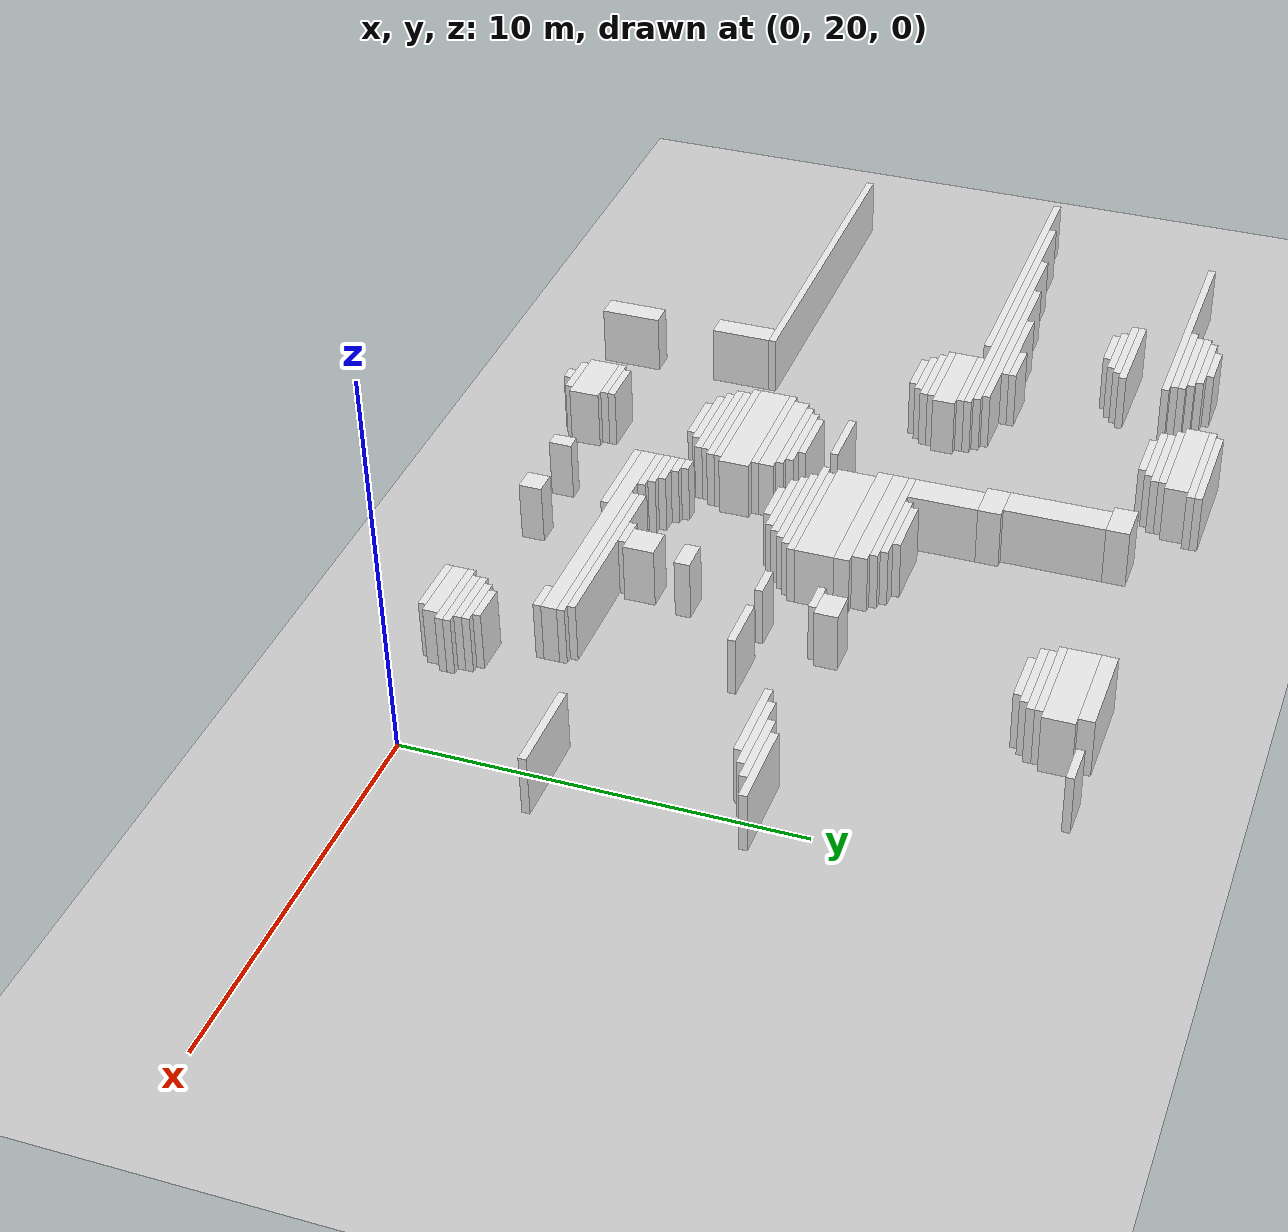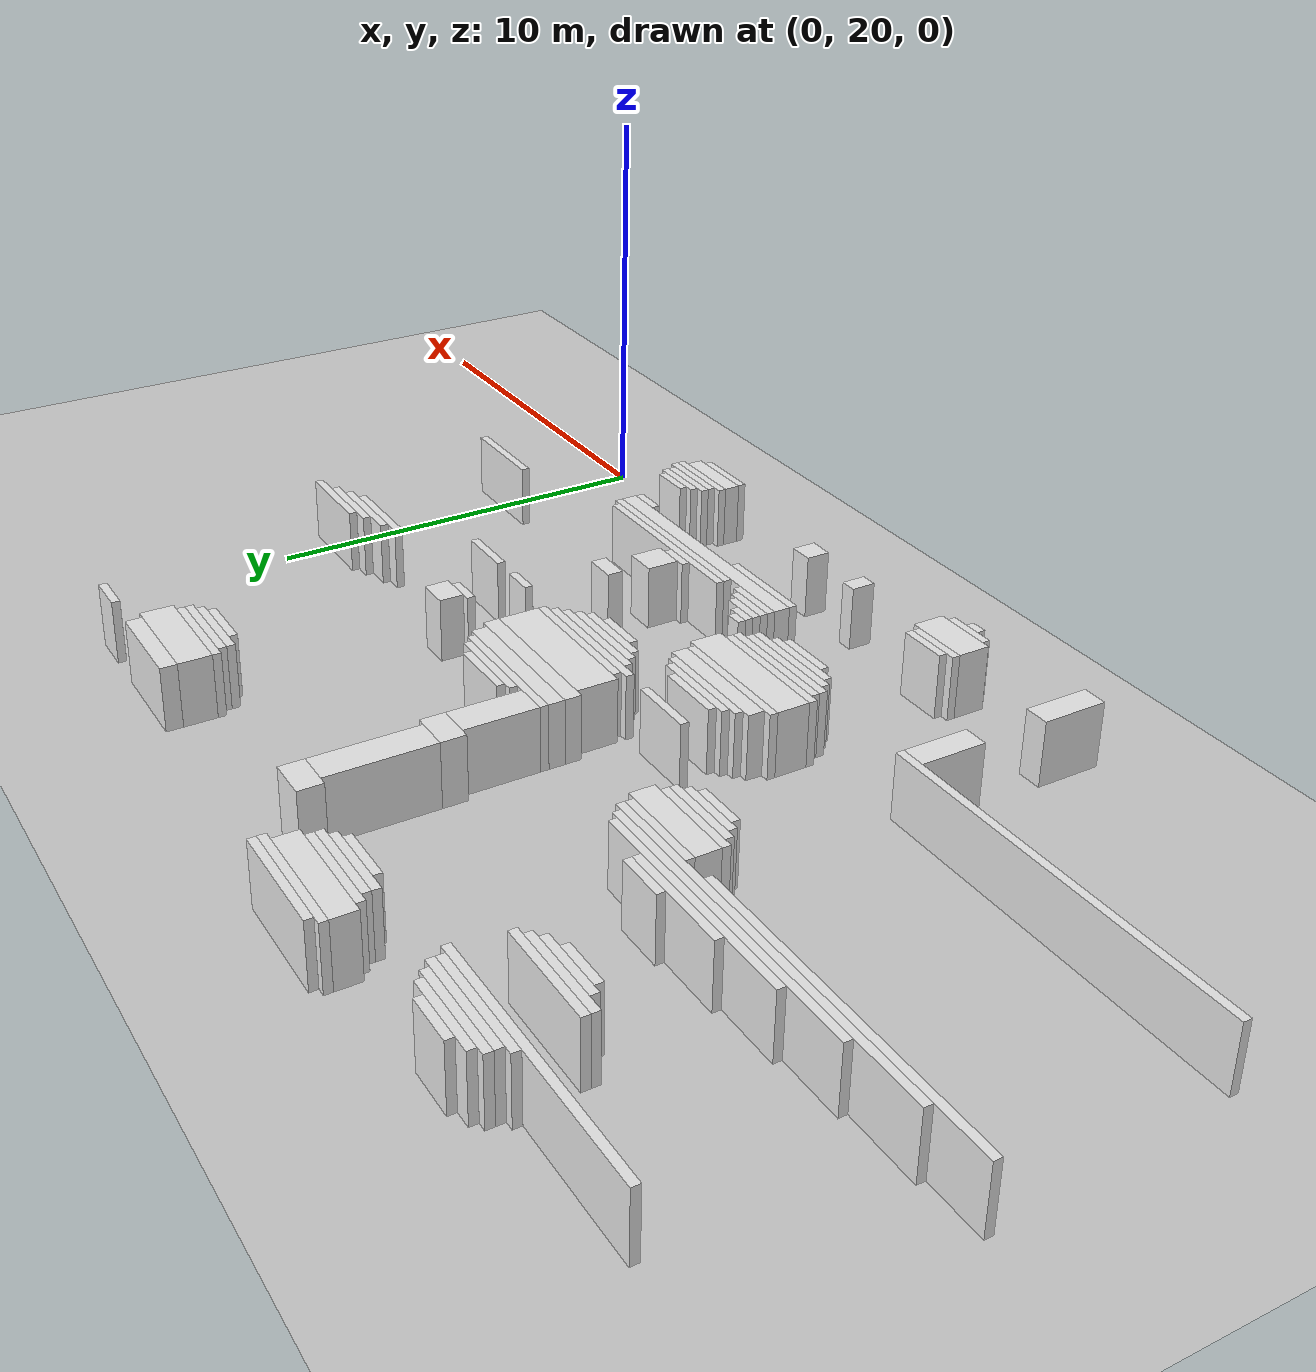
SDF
<sdf version="1.7">
 <world name="default">
  <model name="ground_plane">
   <static>1</static>
   <link name="link">
    <collision name="collision">
     <geometry><plane><normal>0 0 1</normal><size>120 120</size></plane></geometry>
    </collision>
    <visual name="visual">
     <geometry><plane><normal>0 0 1</normal><size>120 120</size></plane></geometry>
     <material>
      <script><uri>file://media/materials/scripts/gazebo.material</uri><name>Gazebo/Grey</name></script>
     </material>
    </visual>
   </link>
  </model>
  <model name="random_complex_01_model">
   <static>1</static>
   <link name="obs_418">
    <pose>-14.6000 35.9000 0.8000 0 0 0</pose>
    <collision name="obs_418_col"><geometry><box><size>2.8000 0.2000 1.6000</size></box></geometry></collision>
    <visual name="obs_418_vis">
     <geometry><box><size>2.8000 0.2000 1.6000</size></box></geometry>
     <material>
      <script><uri>file://media/materials/scripts/gazebo.material</uri><name>Gazebo/White</name></script>
     </material>
    </visual>
   </link>
   <link name="obs_427">
    <pose>-14.7000 35.7000 0.8000 0 0 0</pose>
    <collision name="obs_427_col"><geometry><box><size>3.0000 0.2000 1.6000</size></box></geometry></collision>
    <visual name="obs_427_vis">
     <geometry><box><size>3.0000 0.2000 1.6000</size></box></geometry>
     <material>
      <script><uri>file://media/materials/scripts/gazebo.material</uri><name>Gazebo/White</name></script>
     </material>
    </visual>
   </link>
   <link name="obs_437">
    <pose>-2.5000 35.3000 0.8000 0 0 0</pose>
    <collision name="obs_437_col"><geometry><box><size>1.0000 0.2000 1.6000</size></box></geometry></collision>
    <visual name="obs_437_vis">
     <geometry><box><size>1.0000 0.2000 1.6000</size></box></geometry>
     <material>
      <script><uri>file://media/materials/scripts/gazebo.material</uri><name>Gazebo/White</name></script>
     </material>
    </visual>
   </link>
   <link name="obs_440">
    <pose>-14.8000 35.3000 0.8000 0 0 0</pose>
    <collision name="obs_440_col"><geometry><box><size>2.8000 0.6000 1.6000</size></box></geometry></collision>
    <visual name="obs_440_vis">
     <geometry><box><size>2.8000 0.6000 1.6000</size></box></geometry>
     <material>
      <script><uri>file://media/materials/scripts/gazebo.material</uri><name>Gazebo/White</name></script>
     </material>
    </visual>
   </link>
   <link name="obs_441">
    <pose>-5.2000 35.2000 0.8000 0 0 0</pose>
    <collision name="obs_441_col"><geometry><box><size>2.4000 0.4000 1.6000</size></box></geometry></collision>
    <visual name="obs_441_vis">
     <geometry><box><size>2.4000 0.4000 1.6000</size></box></geometry>
     <material>
      <script><uri>file://media/materials/scripts/gazebo.material</uri><name>Gazebo/White</name></script>
     </material>
    </visual>
   </link>
   <link name="obs_444">
    <pose>-19.4000 35.1000 0.8000 0 0 0</pose>
    <collision name="obs_444_col"><geometry><box><size>1.2000 0.2000 1.6000</size></box></geometry></collision>
    <visual name="obs_444_vis">
     <geometry><box><size>1.2000 0.2000 1.6000</size></box></geometry>
     <material>
      <script><uri>file://media/materials/scripts/gazebo.material</uri><name>Gazebo/White</name></script>
     </material>
    </visual>
   </link>
   <link name="obs_452">
    <pose>-19.4000 34.9000 0.8000 0 0 0</pose>
    <collision name="obs_452_col"><geometry><box><size>2.0000 0.2000 1.6000</size></box></geometry></collision>
    <visual name="obs_452_vis">
     <geometry><box><size>2.0000 0.2000 1.6000</size></box></geometry>
     <material>
      <script><uri>file://media/materials/scripts/gazebo.material</uri><name>Gazebo/White</name></script>
     </material>
    </visual>
   </link>
   <link name="obs_453">
    <pose>-14.8000 34.9000 0.8000 0 0 0</pose>
    <collision name="obs_453_col"><geometry><box><size>2.4000 0.2000 1.6000</size></box></geometry></collision>
    <visual name="obs_453_vis">
     <geometry><box><size>2.4000 0.2000 1.6000</size></box></geometry>
     <material>
      <script><uri>file://media/materials/scripts/gazebo.material</uri><name>Gazebo/White</name></script>
     </material>
    </visual>
   </link>
   <link name="obs_458">
    <pose>-19.4000 34.7000 0.8000 0 0 0</pose>
    <collision name="obs_458_col"><geometry><box><size>2.4000 0.2000 1.6000</size></box></geometry></collision>
    <visual name="obs_458_vis">
     <geometry><box><size>2.4000 0.2000 1.6000</size></box></geometry>
     <material>
      <script><uri>file://media/materials/scripts/gazebo.material</uri><name>Gazebo/White</name></script>
     </material>
    </visual>
   </link>
   <link name="obs_459">
    <pose>-14.7000 34.7000 0.8000 0 0 0</pose>
    <collision name="obs_459_col"><geometry><box><size>2.2000 0.2000 1.6000</size></box></geometry></collision>
    <visual name="obs_459_vis">
     <geometry><box><size>2.2000 0.2000 1.6000</size></box></geometry>
     <material>
      <script><uri>file://media/materials/scripts/gazebo.material</uri><name>Gazebo/White</name></script>
     </material>
    </visual>
   </link>
   <link name="obs_467">
    <pose>-19.3000 34.5000 0.8000 0 0 0</pose>
    <collision name="obs_467_col"><geometry><box><size>2.6000 0.2000 1.6000</size></box></geometry></collision>
    <visual name="obs_467_vis">
     <geometry><box><size>2.6000 0.2000 1.6000</size></box></geometry>
     <material>
      <script><uri>file://media/materials/scripts/gazebo.material</uri><name>Gazebo/White</name></script>
     </material>
    </visual>
   </link>
   <link name="obs_468">
    <pose>-14.8000 34.5000 0.8000 0 0 0</pose>
    <collision name="obs_468_col"><geometry><box><size>2.0000 0.2000 1.6000</size></box></geometry></collision>
    <visual name="obs_468_vis">
     <geometry><box><size>2.0000 0.2000 1.6000</size></box></geometry>
     <material>
      <script><uri>file://media/materials/scripts/gazebo.material</uri><name>Gazebo/White</name></script>
     </material>
    </visual>
   </link>
   <link name="obs_473">
    <pose>-5.1000 34.6000 0.8000 0 0 0</pose>
    <collision name="obs_473_col"><geometry><box><size>2.6000 0.8000 1.6000</size></box></geometry></collision>
    <visual name="obs_473_vis">
     <geometry><box><size>2.6000 0.8000 1.6000</size></box></geometry>
     <material>
      <script><uri>file://media/materials/scripts/gazebo.material</uri><name>Gazebo/White</name></script>
     </material>
    </visual>
   </link>
   <link name="obs_478">
    <pose>-19.4000 34.3000 0.8000 0 0 0</pose>
    <collision name="obs_478_col"><geometry><box><size>2.8000 0.2000 1.6000</size></box></geometry></collision>
    <visual name="obs_478_vis">
     <geometry><box><size>2.8000 0.2000 1.6000</size></box></geometry>
     <material>
      <script><uri>file://media/materials/scripts/gazebo.material</uri><name>Gazebo/White</name></script>
     </material>
    </visual>
   </link>
   <link name="obs_479">
    <pose>-14.7000 34.3000 0.8000 0 0 0</pose>
    <collision name="obs_479_col"><geometry><box><size>1.4000 0.2000 1.6000</size></box></geometry></collision>
    <visual name="obs_479_vis">
     <geometry><box><size>1.4000 0.2000 1.6000</size></box></geometry>
     <material>
      <script><uri>file://media/materials/scripts/gazebo.material</uri><name>Gazebo/White</name></script>
     </material>
    </visual>
   </link>
   <link name="obs_484">
    <pose>-11.7000 34.3000 0.8000 0 0 0</pose>
    <collision name="obs_484_col"><geometry><box><size>1.0000 0.6000 1.6000</size></box></geometry></collision>
    <visual name="obs_484_vis">
     <geometry><box><size>1.0000 0.6000 1.6000</size></box></geometry>
     <material>
      <script><uri>file://media/materials/scripts/gazebo.material</uri><name>Gazebo/White</name></script>
     </material>
    </visual>
   </link>
   <link name="obs_488">
    <pose>-21.0000 34.1000 0.8000 0 0 0</pose>
    <collision name="obs_488_col"><geometry><box><size>6.4000 0.2000 1.6000</size></box></geometry></collision>
    <visual name="obs_488_vis">
     <geometry><box><size>6.4000 0.2000 1.6000</size></box></geometry>
     <material>
      <script><uri>file://media/materials/scripts/gazebo.material</uri><name>Gazebo/White</name></script>
     </material>
    </visual>
   </link>
   <link name="obs_489">
    <pose>-5.2000 34.1000 0.8000 0 0 0</pose>
    <collision name="obs_489_col"><geometry><box><size>2.4000 0.2000 1.6000</size></box></geometry></collision>
    <visual name="obs_489_vis">
     <geometry><box><size>2.4000 0.2000 1.6000</size></box></geometry>
     <material>
      <script><uri>file://media/materials/scripts/gazebo.material</uri><name>Gazebo/White</name></script>
     </material>
    </visual>
   </link>
   <link name="obs_498">
    <pose>-5.1000 33.9000 0.8000 0 0 0</pose>
    <collision name="obs_498_col"><geometry><box><size>2.2000 0.2000 1.6000</size></box></geometry></collision>
    <visual name="obs_498_vis">
     <geometry><box><size>2.2000 0.2000 1.6000</size></box></geometry>
     <material>
      <script><uri>file://media/materials/scripts/gazebo.material</uri><name>Gazebo/White</name></script>
     </material>
    </visual>
   </link>
   <link name="obs_506">
    <pose>-5.2000 33.7000 0.8000 0 0 0</pose>
    <collision name="obs_506_col"><geometry><box><size>2.0000 0.2000 1.6000</size></box></geometry></collision>
    <visual name="obs_506_vis">
     <geometry><box><size>2.0000 0.2000 1.6000</size></box></geometry>
     <material>
      <script><uri>file://media/materials/scripts/gazebo.material</uri><name>Gazebo/White</name></script>
     </material>
    </visual>
   </link>
   <link name="obs_514">
    <pose>-5.1000 33.5000 0.8000 0 0 0</pose>
    <collision name="obs_514_col"><geometry><box><size>1.4000 0.2000 1.6000</size></box></geometry></collision>
    <visual name="obs_514_vis">
     <geometry><box><size>1.4000 0.2000 1.6000</size></box></geometry>
     <material>
      <script><uri>file://media/materials/scripts/gazebo.material</uri><name>Gazebo/White</name></script>
     </material>
    </visual>
   </link>
   <link name="obs_537">
    <pose>-19.3000 32.9000 0.8000 0 0 0</pose>
    <collision name="obs_537_col"><geometry><box><size>2.6000 0.2000 1.6000</size></box></geometry></collision>
    <visual name="obs_537_vis">
     <geometry><box><size>2.6000 0.2000 1.6000</size></box></geometry>
     <material>
      <script><uri>file://media/materials/scripts/gazebo.material</uri><name>Gazebo/White</name></script>
     </material>
    </visual>
   </link>
   <link name="obs_546">
    <pose>-19.4000 32.7000 0.8000 0 0 0</pose>
    <collision name="obs_546_col"><geometry><box><size>2.4000 0.2000 1.6000</size></box></geometry></collision>
    <visual name="obs_546_vis">
     <geometry><box><size>2.4000 0.2000 1.6000</size></box></geometry>
     <material>
      <script><uri>file://media/materials/scripts/gazebo.material</uri><name>Gazebo/White</name></script>
     </material>
    </visual>
   </link>
   <link name="obs_556">
    <pose>-19.3000 32.5000 0.8000 0 0 0</pose>
    <collision name="obs_556_col"><geometry><box><size>1.8000 0.2000 1.6000</size></box></geometry></collision>
    <visual name="obs_556_vis">
     <geometry><box><size>1.8000 0.2000 1.6000</size></box></geometry>
     <material>
      <script><uri>file://media/materials/scripts/gazebo.material</uri><name>Gazebo/White</name></script>
     </material>
    </visual>
   </link>
   <link name="obs_565">
    <pose>-19.4000 32.3000 0.8000 0 0 0</pose>
    <collision name="obs_565_col"><geometry><box><size>1.2000 0.2000 1.6000</size></box></geometry></collision>
    <visual name="obs_565_vis">
     <geometry><box><size>1.2000 0.2000 1.6000</size></box></geometry>
     <material>
      <script><uri>file://media/materials/scripts/gazebo.material</uri><name>Gazebo/White</name></script>
     </material>
    </visual>
   </link>
   <link name="obs_598">
    <pose>-11.6000 32.7000 0.8000 0 0 0</pose>
    <collision name="obs_598_col"><geometry><box><size>0.8000 2.6000 1.6000</size></box></geometry></collision>
    <visual name="obs_598_vis">
     <geometry><box><size>0.8000 2.6000 1.6000</size></box></geometry>
     <material>
      <script><uri>file://media/materials/scripts/gazebo.material</uri><name>Gazebo/White</name></script>
     </material>
    </visual>
   </link>
   <link name="obs_616">
    <pose>-11.5000 31.1000 0.8000 0 0 0</pose>
    <collision name="obs_616_col"><geometry><box><size>1.0000 0.6000 1.6000</size></box></geometry></collision>
    <visual name="obs_616_vis">
     <geometry><box><size>1.0000 0.6000 1.6000</size></box></geometry>
     <material>
      <script><uri>file://media/materials/scripts/gazebo.material</uri><name>Gazebo/White</name></script>
     </material>
    </visual>
   </link>
   <link name="obs_640">
    <pose>-17.8000 30.1000 0.8000 0 0 0</pose>
    <collision name="obs_640_col"><geometry><box><size>1.2000 0.2000 1.6000</size></box></geometry></collision>
    <visual name="obs_640_vis">
     <geometry><box><size>1.2000 0.2000 1.6000</size></box></geometry>
     <material>
      <script><uri>file://media/materials/scripts/gazebo.material</uri><name>Gazebo/White</name></script>
     </material>
    </visual>
   </link>
   <link name="obs_645">
    <pose>-18.6000 29.9000 0.8000 0 0 0</pose>
    <collision name="obs_645_col"><geometry><box><size>2.8000 0.2000 1.6000</size></box></geometry></collision>
    <visual name="obs_645_vis">
     <geometry><box><size>2.8000 0.2000 1.6000</size></box></geometry>
     <material>
      <script><uri>file://media/materials/scripts/gazebo.material</uri><name>Gazebo/White</name></script>
     </material>
    </visual>
   </link>
   <link name="obs_653">
    <pose>-18.8000 29.7000 0.8000 0 0 0</pose>
    <collision name="obs_653_col"><geometry><box><size>5.6000 0.2000 1.6000</size></box></geometry></collision>
    <visual name="obs_653_vis">
     <geometry><box><size>5.6000 0.2000 1.6000</size></box></geometry>
     <material>
      <script><uri>file://media/materials/scripts/gazebo.material</uri><name>Gazebo/White</name></script>
     </material>
    </visual>
   </link>
   <link name="obs_661">
    <pose>-19.5000 29.5000 0.8000 0 0 0</pose>
    <collision name="obs_661_col"><geometry><box><size>7.4000 0.2000 1.6000</size></box></geometry></collision>
    <visual name="obs_661_vis">
     <geometry><box><size>7.4000 0.2000 1.6000</size></box></geometry>
     <material>
      <script><uri>file://media/materials/scripts/gazebo.material</uri><name>Gazebo/White</name></script>
     </material>
    </visual>
   </link>
   <link name="obs_666">
    <pose>-20.3000 29.3000 0.8000 0 0 0</pose>
    <collision name="obs_666_col"><geometry><box><size>9.4000 0.2000 1.6000</size></box></geometry></collision>
    <visual name="obs_666_vis">
     <geometry><box><size>9.4000 0.2000 1.6000</size></box></geometry>
     <material>
      <script><uri>file://media/materials/scripts/gazebo.material</uri><name>Gazebo/White</name></script>
     </material>
    </visual>
   </link>
   <link name="obs_667">
    <pose>-9.8000 29.3000 0.8000 0 0 0</pose>
    <collision name="obs_667_col"><geometry><box><size>1.6000 0.2000 1.6000</size></box></geometry></collision>
    <visual name="obs_667_vis">
     <geometry><box><size>1.6000 0.2000 1.6000</size></box></geometry>
     <material>
      <script><uri>file://media/materials/scripts/gazebo.material</uri><name>Gazebo/White</name></script>
     </material>
    </visual>
   </link>
   <link name="obs_671">
    <pose>-11.4000 29.9000 0.8000 0 0 0</pose>
    <collision name="obs_671_col"><geometry><box><size>0.8000 1.8000 1.6000</size></box></geometry></collision>
    <visual name="obs_671_vis">
     <geometry><box><size>0.8000 1.8000 1.6000</size></box></geometry>
     <material>
      <script><uri>file://media/materials/scripts/gazebo.material</uri><name>Gazebo/White</name></script>
     </material>
    </visual>
   </link>
   <link name="obs_675">
    <pose>-22.4000 29.1000 0.8000 0 0 0</pose>
    <collision name="obs_675_col"><geometry><box><size>8.0000 0.2000 1.6000</size></box></geometry></collision>
    <visual name="obs_675_vis">
     <geometry><box><size>8.0000 0.2000 1.6000</size></box></geometry>
     <material>
      <script><uri>file://media/materials/scripts/gazebo.material</uri><name>Gazebo/White</name></script>
     </material>
    </visual>
   </link>
   <link name="obs_676">
    <pose>-16.7000 29.1000 0.8000 0 0 0</pose>
    <collision name="obs_676_col"><geometry><box><size>2.2000 0.2000 1.6000</size></box></geometry></collision>
    <visual name="obs_676_vis">
     <geometry><box><size>2.2000 0.2000 1.6000</size></box></geometry>
     <material>
      <script><uri>file://media/materials/scripts/gazebo.material</uri><name>Gazebo/White</name></script>
     </material>
    </visual>
   </link>
   <link name="obs_677">
    <pose>-9.7000 29.1000 0.8000 0 0 0</pose>
    <collision name="obs_677_col"><geometry><box><size>2.2000 0.2000 1.6000</size></box></geometry></collision>
    <visual name="obs_677_vis">
     <geometry><box><size>2.2000 0.2000 1.6000</size></box></geometry>
     <material>
      <script><uri>file://media/materials/scripts/gazebo.material</uri><name>Gazebo/White</name></script>
     </material>
    </visual>
   </link>
   <link name="obs_684">
    <pose>-10.1000 28.9000 0.8000 0 0 0</pose>
    <collision name="obs_684_col"><geometry><box><size>3.4000 0.2000 1.6000</size></box></geometry></collision>
    <visual name="obs_684_vis">
     <geometry><box><size>3.4000 0.2000 1.6000</size></box></geometry>
     <material>
      <script><uri>file://media/materials/scripts/gazebo.material</uri><name>Gazebo/White</name></script>
     </material>
    </visual>
   </link>
   <link name="obs_691">
    <pose>-0.3000 28.7000 0.8000 0 0 0</pose>
    <collision name="obs_691_col"><geometry><box><size>2.2000 0.2000 1.6000</size></box></geometry></collision>
    <visual name="obs_691_vis">
     <geometry><box><size>2.2000 0.2000 1.6000</size></box></geometry>
     <material>
      <script><uri>file://media/materials/scripts/gazebo.material</uri><name>Gazebo/White</name></script>
     </material>
    </visual>
   </link>
   <link name="obs_696">
    <pose>-16.6000 28.7000 0.8000 0 0 0</pose>
    <collision name="obs_696_col"><geometry><box><size>2.4000 0.6000 1.6000</size></box></geometry></collision>
    <visual name="obs_696_vis">
     <geometry><box><size>2.4000 0.6000 1.6000</size></box></geometry>
     <material>
      <script><uri>file://media/materials/scripts/gazebo.material</uri><name>Gazebo/White</name></script>
     </material>
    </visual>
   </link>
   <link name="obs_697">
    <pose>-10.0000 28.6000 0.8000 0 0 0</pose>
    <collision name="obs_697_col"><geometry><box><size>3.6000 0.4000 1.6000</size></box></geometry></collision>
    <visual name="obs_697_vis">
     <geometry><box><size>3.6000 0.4000 1.6000</size></box></geometry>
     <material>
      <script><uri>file://media/materials/scripts/gazebo.material</uri><name>Gazebo/White</name></script>
     </material>
    </visual>
   </link>
   <link name="obs_700">
    <pose>-0.8000 28.5000 0.8000 0 0 0</pose>
    <collision name="obs_700_col"><geometry><box><size>2.0000 0.2000 1.6000</size></box></geometry></collision>
    <visual name="obs_700_vis">
     <geometry><box><size>2.0000 0.2000 1.6000</size></box></geometry>
     <material>
      <script><uri>file://media/materials/scripts/gazebo.material</uri><name>Gazebo/White</name></script>
     </material>
    </visual>
   </link>
   <link name="obs_706">
    <pose>-6.2000 28.5000 0.8000 0 0 0</pose>
    <collision name="obs_706_col"><geometry><box><size>0.8000 0.6000 1.6000</size></box></geometry></collision>
    <visual name="obs_706_vis">
     <geometry><box><size>0.8000 0.6000 1.6000</size></box></geometry>
     <material>
      <script><uri>file://media/materials/scripts/gazebo.material</uri><name>Gazebo/White</name></script>
     </material>
    </visual>
   </link>
   <link name="obs_711">
    <pose>-16.7000 28.3000 0.8000 0 0 0</pose>
    <collision name="obs_711_col"><geometry><box><size>2.2000 0.2000 1.6000</size></box></geometry></collision>
    <visual name="obs_711_vis">
     <geometry><box><size>2.2000 0.2000 1.6000</size></box></geometry>
     <material>
      <script><uri>file://media/materials/scripts/gazebo.material</uri><name>Gazebo/White</name></script>
     </material>
    </visual>
   </link>
   <link name="obs_712">
    <pose>-1.3000 28.3000 0.8000 0 0 0</pose>
    <collision name="obs_712_col"><geometry><box><size>2.2000 0.2000 1.6000</size></box></geometry></collision>
    <visual name="obs_712_vis">
     <geometry><box><size>2.2000 0.2000 1.6000</size></box></geometry>
     <material>
      <script><uri>file://media/materials/scripts/gazebo.material</uri><name>Gazebo/White</name></script>
     </material>
    </visual>
   </link>
   <link name="obs_721">
    <pose>-9.9000 28.2000 0.8000 0 0 0</pose>
    <collision name="obs_721_col"><geometry><box><size>3.8000 0.4000 1.6000</size></box></geometry></collision>
    <visual name="obs_721_vis">
     <geometry><box><size>3.8000 0.4000 1.6000</size></box></geometry>
     <material>
      <script><uri>file://media/materials/scripts/gazebo.material</uri><name>Gazebo/White</name></script>
     </material>
    </visual>
   </link>
   <link name="obs_726">
    <pose>-16.6000 28.1000 0.8000 0 0 0</pose>
    <collision name="obs_726_col"><geometry><box><size>2.0000 0.2000 1.6000</size></box></geometry></collision>
    <visual name="obs_726_vis">
     <geometry><box><size>2.0000 0.2000 1.6000</size></box></geometry>
     <material>
      <script><uri>file://media/materials/scripts/gazebo.material</uri><name>Gazebo/White</name></script>
     </material>
    </visual>
   </link>
   <link name="obs_727">
    <pose>-6.4000 28.1000 0.8000 0 0 0</pose>
    <collision name="obs_727_col"><geometry><box><size>0.8000 0.2000 1.6000</size></box></geometry></collision>
    <visual name="obs_727_vis">
     <geometry><box><size>0.8000 0.2000 1.6000</size></box></geometry>
     <material>
      <script><uri>file://media/materials/scripts/gazebo.material</uri><name>Gazebo/White</name></script>
     </material>
    </visual>
   </link>
   <link name="obs_728">
    <pose>-1.7000 28.1000 0.8000 0 0 0</pose>
    <collision name="obs_728_col"><geometry><box><size>2.2000 0.2000 1.6000</size></box></geometry></collision>
    <visual name="obs_728_vis">
     <geometry><box><size>2.2000 0.2000 1.6000</size></box></geometry>
     <material>
      <script><uri>file://media/materials/scripts/gazebo.material</uri><name>Gazebo/White</name></script>
     </material>
    </visual>
   </link>
   <link name="obs_734">
    <pose>-16.6000 27.9000 0.8000 0 0 0</pose>
    <collision name="obs_734_col"><geometry><box><size>1.6000 0.2000 1.6000</size></box></geometry></collision>
    <visual name="obs_734_vis">
     <geometry><box><size>1.6000 0.2000 1.6000</size></box></geometry>
     <material>
      <script><uri>file://media/materials/scripts/gazebo.material</uri><name>Gazebo/White</name></script>
     </material>
    </visual>
   </link>
   <link name="obs_741">
    <pose>-16.6000 27.7000 0.8000 0 0 0</pose>
    <collision name="obs_741_col"><geometry><box><size>1.2000 0.2000 1.6000</size></box></geometry></collision>
    <visual name="obs_741_vis">
     <geometry><box><size>1.2000 0.2000 1.6000</size></box></geometry>
     <material>
      <script><uri>file://media/materials/scripts/gazebo.material</uri><name>Gazebo/White</name></script>
     </material>
    </visual>
   </link>
   <link name="obs_751">
    <pose>-9.8000 27.5000 0.8000 0 0 0</pose>
    <collision name="obs_751_col"><geometry><box><size>3.6000 1.0000 1.6000</size></box></geometry></collision>
    <visual name="obs_751_vis">
     <geometry><box><size>3.6000 1.0000 1.6000</size></box></geometry>
     <material>
      <script><uri>file://media/materials/scripts/gazebo.material</uri><name>Gazebo/White</name></script>
     </material>
    </visual>
   </link>
   <link name="obs_759">
    <pose>-9.7000 26.9000 0.8000 0 0 0</pose>
    <collision name="obs_759_col"><geometry><box><size>3.4000 0.2000 1.6000</size></box></geometry></collision>
    <visual name="obs_759_vis">
     <geometry><box><size>3.4000 0.2000 1.6000</size></box></geometry>
     <material>
      <script><uri>file://media/materials/scripts/gazebo.material</uri><name>Gazebo/White</name></script>
     </material>
    </visual>
   </link>
   <link name="obs_767">
    <pose>-13.0000 26.7000 0.8000 0 0 0</pose>
    <collision name="obs_767_col"><geometry><box><size>1.6000 0.2000 1.6000</size></box></geometry></collision>
    <visual name="obs_767_vis">
     <geometry><box><size>1.6000 0.2000 1.6000</size></box></geometry>
     <material>
      <script><uri>file://media/materials/scripts/gazebo.material</uri><name>Gazebo/White</name></script>
     </material>
    </visual>
   </link>
   <link name="obs_768">
    <pose>-9.9000 26.7000 0.8000 0 0 0</pose>
    <collision name="obs_768_col"><geometry><box><size>3.4000 0.2000 1.6000</size></box></geometry></collision>
    <visual name="obs_768_vis">
     <geometry><box><size>3.4000 0.2000 1.6000</size></box></geometry>
     <material>
      <script><uri>file://media/materials/scripts/gazebo.material</uri><name>Gazebo/White</name></script>
     </material>
    </visual>
   </link>
   <link name="obs_769">
    <pose>-6.6000 26.7000 0.8000 0 0 0</pose>
    <collision name="obs_769_col"><geometry><box><size>0.8000 0.2000 1.6000</size></box></geometry></collision>
    <visual name="obs_769_vis">
     <geometry><box><size>0.8000 0.2000 1.6000</size></box></geometry>
     <material>
      <script><uri>file://media/materials/scripts/gazebo.material</uri><name>Gazebo/White</name></script>
     </material>
    </visual>
   </link>
   <link name="obs_770">
    <pose>-4.9000 26.7000 0.8000 0 0 0</pose>
    <collision name="obs_770_col"><geometry><box><size>1.4000 0.2000 1.6000</size></box></geometry></collision>
    <visual name="obs_770_vis">
     <geometry><box><size>1.4000 0.2000 1.6000</size></box></geometry>
     <material>
      <script><uri>file://media/materials/scripts/gazebo.material</uri><name>Gazebo/White</name></script>
     </material>
    </visual>
   </link>
   <link name="obs_780">
    <pose>-9.8000 26.5000 0.8000 0 0 0</pose>
    <collision name="obs_780_col"><geometry><box><size>2.8000 0.2000 1.6000</size></box></geometry></collision>
    <visual name="obs_780_vis">
     <geometry><box><size>2.8000 0.2000 1.6000</size></box></geometry>
     <material>
      <script><uri>file://media/materials/scripts/gazebo.material</uri><name>Gazebo/White</name></script>
     </material>
    </visual>
   </link>
   <link name="obs_784">
    <pose>-9.8000 26.3000 0.8000 0 0 0</pose>
    <collision name="obs_784_col"><geometry><box><size>2.4000 0.2000 1.6000</size></box></geometry></collision>
    <visual name="obs_784_vis">
     <geometry><box><size>2.4000 0.2000 1.6000</size></box></geometry>
     <material>
      <script><uri>file://media/materials/scripts/gazebo.material</uri><name>Gazebo/White</name></script>
     </material>
    </visual>
   </link>
   <link name="obs_792">
    <pose>-9.8000 26.1000 0.8000 0 0 0</pose>
    <collision name="obs_792_col"><geometry><box><size>2.0000 0.2000 1.6000</size></box></geometry></collision>
    <visual name="obs_792_vis">
     <geometry><box><size>2.0000 0.2000 1.6000</size></box></geometry>
     <material>
      <script><uri>file://media/materials/scripts/gazebo.material</uri><name>Gazebo/White</name></script>
     </material>
    </visual>
   </link>
   <link name="obs_798">
    <pose>-12.8000 25.9000 0.8000 0 0 0</pose>
    <collision name="obs_798_col"><geometry><box><size>1.6000 0.2000 1.6000</size></box></geometry></collision>
    <visual name="obs_798_vis">
     <geometry><box><size>1.6000 0.2000 1.6000</size></box></geometry>
     <material>
      <script><uri>file://media/materials/scripts/gazebo.material</uri><name>Gazebo/White</name></script>
     </material>
    </visual>
   </link>
   <link name="obs_799">
    <pose>-9.8000 25.9000 0.8000 0 0 0</pose>
    <collision name="obs_799_col"><geometry><box><size>1.2000 0.2000 1.6000</size></box></geometry></collision>
    <visual name="obs_799_vis">
     <geometry><box><size>1.2000 0.2000 1.6000</size></box></geometry>
     <material>
      <script><uri>file://media/materials/scripts/gazebo.material</uri><name>Gazebo/White</name></script>
     </material>
    </visual>
   </link>
   <link name="obs_805">
    <pose>-12.7000 25.7000 0.8000 0 0 0</pose>
    <collision name="obs_805_col"><geometry><box><size>2.2000 0.2000 1.6000</size></box></geometry></collision>
    <visual name="obs_805_vis">
     <geometry><box><size>2.2000 0.2000 1.6000</size></box></geometry>
     <material>
      <script><uri>file://media/materials/scripts/gazebo.material</uri><name>Gazebo/White</name></script>
     </material>
    </visual>
   </link>
   <link name="obs_810">
    <pose>-12.7000 25.5000 0.8000 0 0 0</pose>
    <collision name="obs_810_col"><geometry><box><size>2.6000 0.2000 1.6000</size></box></geometry></collision>
    <visual name="obs_810_vis">
     <geometry><box><size>2.6000 0.2000 1.6000</size></box></geometry>
     <material>
      <script><uri>file://media/materials/scripts/gazebo.material</uri><name>Gazebo/White</name></script>
     </material>
    </visual>
   </link>
   <link name="obs_821">
    <pose>-12.7000 25.2000 0.8000 0 0 0</pose>
    <collision name="obs_821_col"><geometry><box><size>3.0000 0.4000 1.6000</size></box></geometry></collision>
    <visual name="obs_821_vis">
     <geometry><box><size>3.0000 0.4000 1.6000</size></box></geometry>
     <material>
      <script><uri>file://media/materials/scripts/gazebo.material</uri><name>Gazebo/White</name></script>
     </material>
    </visual>
   </link>
   <link name="obs_826">
    <pose>-12.8000 24.9000 0.8000 0 0 0</pose>
    <collision name="obs_826_col"><geometry><box><size>3.2000 0.2000 1.6000</size></box></geometry></collision>
    <visual name="obs_826_vis">
     <geometry><box><size>3.2000 0.2000 1.6000</size></box></geometry>
     <material>
      <script><uri>file://media/materials/scripts/gazebo.material</uri><name>Gazebo/White</name></script>
     </material>
    </visual>
   </link>
   <link name="obs_835">
    <pose>-7.0000 24.6000 0.8000 0 0 0</pose>
    <collision name="obs_835_col"><geometry><box><size>0.8000 0.4000 1.6000</size></box></geometry></collision>
    <visual name="obs_835_vis">
     <geometry><box><size>0.8000 0.4000 1.6000</size></box></geometry>
     <material>
      <script><uri>file://media/materials/scripts/gazebo.material</uri><name>Gazebo/White</name></script>
     </material>
    </visual>
   </link>
   <link name="obs_848">
    <pose>-12.7000 24.4000 0.8000 0 0 0</pose>
    <collision name="obs_848_col"><geometry><box><size>3.4000 0.8000 1.6000</size></box></geometry></collision>
    <visual name="obs_848_vis">
     <geometry><box><size>3.4000 0.8000 1.6000</size></box></geometry>
     <material>
      <script><uri>file://media/materials/scripts/gazebo.material</uri><name>Gazebo/White</name></script>
     </material>
    </visual>
   </link>
   <link name="obs_860">
    <pose>-12.8000 23.9000 0.8000 0 0 0</pose>
    <collision name="obs_860_col"><geometry><box><size>3.2000 0.2000 1.6000</size></box></geometry></collision>
    <visual name="obs_860_vis">
     <geometry><box><size>3.2000 0.2000 1.6000</size></box></geometry>
     <material>
      <script><uri>file://media/materials/scripts/gazebo.material</uri><name>Gazebo/White</name></script>
     </material>
    </visual>
   </link>
   <link name="obs_865">
    <pose>-12.7000 23.7000 0.8000 0 0 0</pose>
    <collision name="obs_865_col"><geometry><box><size>3.0000 0.2000 1.6000</size></box></geometry></collision>
    <visual name="obs_865_vis">
     <geometry><box><size>3.0000 0.2000 1.6000</size></box></geometry>
     <material>
      <script><uri>file://media/materials/scripts/gazebo.material</uri><name>Gazebo/White</name></script>
     </material>
    </visual>
   </link>
   <link name="obs_866">
    <pose>0.0000 23.7000 0.8000 0 0 0</pose>
    <collision name="obs_866_col"><geometry><box><size>2.4000 0.2000 1.6000</size></box></geometry></collision>
    <visual name="obs_866_vis">
     <geometry><box><size>2.4000 0.2000 1.6000</size></box></geometry>
     <material>
      <script><uri>file://media/materials/scripts/gazebo.material</uri><name>Gazebo/White</name></script>
     </material>
    </visual>
   </link>
   <link name="obs_871">
    <pose>-21.4000 23.5000 0.8000 0 0 0</pose>
    <collision name="obs_871_col"><geometry><box><size>9.2000 0.2000 1.6000</size></box></geometry></collision>
    <visual name="obs_871_vis">
     <geometry><box><size>9.2000 0.2000 1.6000</size></box></geometry>
     <material>
      <script><uri>file://media/materials/scripts/gazebo.material</uri><name>Gazebo/White</name></script>
     </material>
    </visual>
   </link>
   <link name="obs_872">
    <pose>-12.8000 23.5000 0.8000 0 0 0</pose>
    <collision name="obs_872_col"><geometry><box><size>2.8000 0.2000 1.6000</size></box></geometry></collision>
    <visual name="obs_872_vis">
     <geometry><box><size>2.8000 0.2000 1.6000</size></box></geometry>
     <material>
      <script><uri>file://media/materials/scripts/gazebo.material</uri><name>Gazebo/White</name></script>
     </material>
    </visual>
   </link>
   <link name="obs_881">
    <pose>-12.7000 23.3000 0.8000 0 0 0</pose>
    <collision name="obs_881_col"><geometry><box><size>2.6000 0.2000 1.6000</size></box></geometry></collision>
    <visual name="obs_881_vis">
     <geometry><box><size>2.6000 0.2000 1.6000</size></box></geometry>
     <material>
      <script><uri>file://media/materials/scripts/gazebo.material</uri><name>Gazebo/White</name></script>
     </material>
    </visual>
   </link>
   <link name="obs_882">
    <pose>-10.6000 23.3000 0.8000 0 0 0</pose>
    <collision name="obs_882_col"><geometry><box><size>0.4000 0.2000 1.6000</size></box></geometry></collision>
    <visual name="obs_882_vis">
     <geometry><box><size>0.4000 0.2000 1.6000</size></box></geometry>
     <material>
      <script><uri>file://media/materials/scripts/gazebo.material</uri><name>Gazebo/White</name></script>
     </material>
    </visual>
   </link>
   <link name="obs_887">
    <pose>-7.2000 23.4000 0.8000 0 0 0</pose>
    <collision name="obs_887_col"><geometry><box><size>0.8000 0.8000 1.6000</size></box></geometry></collision>
    <visual name="obs_887_vis">
     <geometry><box><size>0.8000 0.8000 1.6000</size></box></geometry>
     <material>
      <script><uri>file://media/materials/scripts/gazebo.material</uri><name>Gazebo/White</name></script>
     </material>
    </visual>
   </link>
   <link name="obs_891">
    <pose>-12.8000 23.1000 0.8000 0 0 0</pose>
    <collision name="obs_891_col"><geometry><box><size>2.0000 0.2000 1.6000</size></box></geometry></collision>
    <visual name="obs_891_vis">
     <geometry><box><size>2.0000 0.2000 1.6000</size></box></geometry>
     <material>
      <script><uri>file://media/materials/scripts/gazebo.material</uri><name>Gazebo/White</name></script>
     </material>
    </visual>
   </link>
   <link name="obs_892">
    <pose>-10.5000 23.1000 0.8000 0 0 0</pose>
    <collision name="obs_892_col"><geometry><box><size>0.6000 0.2000 1.6000</size></box></geometry></collision>
    <visual name="obs_892_vis">
     <geometry><box><size>0.6000 0.2000 1.6000</size></box></geometry>
     <material>
      <script><uri>file://media/materials/scripts/gazebo.material</uri><name>Gazebo/White</name></script>
     </material>
    </visual>
   </link>
   <link name="obs_899">
    <pose>-12.7000 22.9000 0.8000 0 0 0</pose>
    <collision name="obs_899_col"><geometry><box><size>1.4000 0.2000 1.6000</size></box></geometry></collision>
    <visual name="obs_899_vis">
     <geometry><box><size>1.4000 0.2000 1.6000</size></box></geometry>
     <material>
      <script><uri>file://media/materials/scripts/gazebo.material</uri><name>Gazebo/White</name></script>
     </material>
    </visual>
   </link>
   <link name="obs_900">
    <pose>-10.3000 22.9000 0.8000 0 0 0</pose>
    <collision name="obs_900_col"><geometry><box><size>1.0000 0.2000 1.6000</size></box></geometry></collision>
    <visual name="obs_900_vis">
     <geometry><box><size>1.0000 0.2000 1.6000</size></box></geometry>
     <material>
      <script><uri>file://media/materials/scripts/gazebo.material</uri><name>Gazebo/White</name></script>
     </material>
    </visual>
   </link>
   <link name="obs_901">
    <pose>-7.4000 22.9000 0.8000 0 0 0</pose>
    <collision name="obs_901_col"><geometry><box><size>0.8000 0.2000 1.6000</size></box></geometry></collision>
    <visual name="obs_901_vis">
     <geometry><box><size>0.8000 0.2000 1.6000</size></box></geometry>
     <material>
      <script><uri>file://media/materials/scripts/gazebo.material</uri><name>Gazebo/White</name></script>
     </material>
    </visual>
   </link>
   <link name="obs_910">
    <pose>-10.2000 22.7000 0.8000 0 0 0</pose>
    <collision name="obs_910_col"><geometry><box><size>1.2000 0.2000 1.6000</size></box></geometry></collision>
    <visual name="obs_910_vis">
     <geometry><box><size>1.2000 0.2000 1.6000</size></box></geometry>
     <material>
      <script><uri>file://media/materials/scripts/gazebo.material</uri><name>Gazebo/White</name></script>
     </material>
    </visual>
   </link>
   <link name="obs_911">
    <pose>-6.6000 22.7000 0.8000 0 0 0</pose>
    <collision name="obs_911_col"><geometry><box><size>4.8000 0.2000 1.6000</size></box></geometry></collision>
    <visual name="obs_911_vis">
     <geometry><box><size>4.8000 0.2000 1.6000</size></box></geometry>
     <material>
      <script><uri>file://media/materials/scripts/gazebo.material</uri><name>Gazebo/White</name></script>
     </material>
    </visual>
   </link>
   <link name="obs_920">
    <pose>-10.1000 22.5000 0.8000 0 0 0</pose>
    <collision name="obs_920_col"><geometry><box><size>1.4000 0.2000 1.6000</size></box></geometry></collision>
    <visual name="obs_920_vis">
     <geometry><box><size>1.4000 0.2000 1.6000</size></box></geometry>
     <material>
      <script><uri>file://media/materials/scripts/gazebo.material</uri><name>Gazebo/White</name></script>
     </material>
    </visual>
   </link>
   <link name="obs_921">
    <pose>-6.5000 22.5000 0.8000 0 0 0</pose>
    <collision name="obs_921_col"><geometry><box><size>5.0000 0.2000 1.6000</size></box></geometry></collision>
    <visual name="obs_921_vis">
     <geometry><box><size>5.0000 0.2000 1.6000</size></box></geometry>
     <material>
      <script><uri>file://media/materials/scripts/gazebo.material</uri><name>Gazebo/White</name></script>
     </material>
    </visual>
   </link>
   <link name="obs_933">
    <pose>-7.4000 22.2000 0.8000 0 0 0</pose>
    <collision name="obs_933_col"><geometry><box><size>6.8000 0.4000 1.6000</size></box></geometry></collision>
    <visual name="obs_933_vis">
     <geometry><box><size>6.8000 0.4000 1.6000</size></box></geometry>
     <material>
      <script><uri>file://media/materials/scripts/gazebo.material</uri><name>Gazebo/White</name></script>
     </material>
    </visual>
   </link>
   <link name="obs_941">
    <pose>-17.1000 22.6000 0.8000 0 0 0</pose>
    <collision name="obs_941_col"><geometry><box><size>0.6000 1.6000 1.6000</size></box></geometry></collision>
    <visual name="obs_941_vis">
     <geometry><box><size>0.6000 1.6000 1.6000</size></box></geometry>
     <material>
      <script><uri>file://media/materials/scripts/gazebo.material</uri><name>Gazebo/White</name></script>
     </material>
    </visual>
   </link>
   <link name="obs_948">
    <pose>-9.6000 21.9000 0.8000 0 0 0</pose>
    <collision name="obs_948_col"><geometry><box><size>2.4000 0.2000 1.6000</size></box></geometry></collision>
    <visual name="obs_948_vis">
     <geometry><box><size>2.4000 0.2000 1.6000</size></box></geometry>
     <material>
      <script><uri>file://media/materials/scripts/gazebo.material</uri><name>Gazebo/White</name></script>
     </material>
    </visual>
   </link>
   <link name="obs_949">
    <pose>-4.4000 21.9000 0.8000 0 0 0</pose>
    <collision name="obs_949_col"><geometry><box><size>0.8000 0.2000 1.6000</size></box></geometry></collision>
    <visual name="obs_949_vis">
     <geometry><box><size>0.8000 0.2000 1.6000</size></box></geometry>
     <material>
      <script><uri>file://media/materials/scripts/gazebo.material</uri><name>Gazebo/White</name></script>
     </material>
    </visual>
   </link>
   <link name="obs_966">
    <pose>-3.7000 20.7000 0.8000 0 0 0</pose>
    <collision name="obs_966_col"><geometry><box><size>1.0000 0.2000 1.6000</size></box></geometry></collision>
    <visual name="obs_966_vis">
     <geometry><box><size>1.0000 0.2000 1.6000</size></box></geometry>
     <material>
      <script><uri>file://media/materials/scripts/gazebo.material</uri><name>Gazebo/White</name></script>
     </material>
    </visual>
   </link>
   <link name="obs_970">
    <pose>-3.7000 20.5000 0.8000 0 0 0</pose>
    <collision name="obs_970_col"><geometry><box><size>1.4000 0.2000 1.6000</size></box></geometry></collision>
    <visual name="obs_970_vis">
     <geometry><box><size>1.4000 0.2000 1.6000</size></box></geometry>
     <material>
      <script><uri>file://media/materials/scripts/gazebo.material</uri><name>Gazebo/White</name></script>
     </material>
    </visual>
   </link>
   <link name="obs_974">
    <pose>-13.6000 20.3000 0.8000 0 0 0</pose>
    <collision name="obs_974_col"><geometry><box><size>1.2000 0.2000 1.6000</size></box></geometry></collision>
    <visual name="obs_974_vis">
     <geometry><box><size>1.2000 0.2000 1.6000</size></box></geometry>
     <material>
      <script><uri>file://media/materials/scripts/gazebo.material</uri><name>Gazebo/White</name></script>
     </material>
    </visual>
   </link>
   <link name="obs_975">
    <pose>-3.8000 20.3000 0.8000 0 0 0</pose>
    <collision name="obs_975_col"><geometry><box><size>1.6000 0.2000 1.6000</size></box></geometry></collision>
    <visual name="obs_975_vis">
     <geometry><box><size>1.6000 0.2000 1.6000</size></box></geometry>
     <material>
      <script><uri>file://media/materials/scripts/gazebo.material</uri><name>Gazebo/White</name></script>
     </material>
    </visual>
   </link>
   <link name="obs_980">
    <pose>-13.7000 20.1000 0.8000 0 0 0</pose>
    <collision name="obs_980_col"><geometry><box><size>1.4000 0.2000 1.6000</size></box></geometry></collision>
    <visual name="obs_980_vis">
     <geometry><box><size>1.4000 0.2000 1.6000</size></box></geometry>
     <material>
      <script><uri>file://media/materials/scripts/gazebo.material</uri><name>Gazebo/White</name></script>
     </material>
    </visual>
   </link>
   <link name="obs_981">
    <pose>-3.7000 20.1000 0.8000 0 0 0</pose>
    <collision name="obs_981_col"><geometry><box><size>1.8000 0.2000 1.6000</size></box></geometry></collision>
    <visual name="obs_981_vis">
     <geometry><box><size>1.8000 0.2000 1.6000</size></box></geometry>
     <material>
      <script><uri>file://media/materials/scripts/gazebo.material</uri><name>Gazebo/White</name></script>
     </material>
    </visual>
   </link>
   <link name="obs_989">
    <pose>-3.8000 19.9000 0.8000 0 0 0</pose>
    <collision name="obs_989_col"><geometry><box><size>2.0000 0.2000 1.6000</size></box></geometry></collision>
    <visual name="obs_989_vis">
     <geometry><box><size>2.0000 0.2000 1.6000</size></box></geometry>
     <material>
      <script><uri>file://media/materials/scripts/gazebo.material</uri><name>Gazebo/White</name></script>
     </material>
    </visual>
   </link>
   <link name="obs_991">
    <pose>-10.6000 19.9000 0.8000 0 0 0</pose>
    <collision name="obs_991_col"><geometry><box><size>0.4000 0.6000 1.6000</size></box></geometry></collision>
    <visual name="obs_991_vis">
     <geometry><box><size>0.4000 0.6000 1.6000</size></box></geometry>
     <material>
      <script><uri>file://media/materials/scripts/gazebo.material</uri><name>Gazebo/White</name></script>
     </material>
    </visual>
   </link>
   <link name="obs_992">
    <pose>-8.7000 19.9000 0.8000 0 0 0</pose>
    <collision name="obs_992_col"><geometry><box><size>0.6000 0.6000 1.6000</size></box></geometry></collision>
    <visual name="obs_992_vis">
     <geometry><box><size>0.6000 0.6000 1.6000</size></box></geometry>
     <material>
      <script><uri>file://media/materials/scripts/gazebo.material</uri><name>Gazebo/White</name></script>
     </material>
    </visual>
   </link>
   <link name="obs_997">
    <pose>-3.9000 19.6000 0.8000 0 0 0</pose>
    <collision name="obs_997_col"><geometry><box><size>1.8000 0.4000 1.6000</size></box></geometry></collision>
    <visual name="obs_997_vis">
     <geometry><box><size>1.8000 0.4000 1.6000</size></box></geometry>
     <material>
      <script><uri>file://media/materials/scripts/gazebo.material</uri><name>Gazebo/White</name></script>
     </material>
    </visual>
   </link>
   <link name="obs_1001">
    <pose>-13.6000 19.6000 0.8000 0 0 0</pose>
    <collision name="obs_1001_col"><geometry><box><size>1.6000 0.8000 1.6000</size></box></geometry></collision>
    <visual name="obs_1001_vis">
     <geometry><box><size>1.6000 0.8000 1.6000</size></box></geometry>
     <material>
      <script><uri>file://media/materials/scripts/gazebo.material</uri><name>Gazebo/White</name></script>
     </material>
    </visual>
   </link>
   <link name="obs_1005">
    <pose>-4.0000 19.3000 0.8000 0 0 0</pose>
    <collision name="obs_1005_col"><geometry><box><size>1.6000 0.2000 1.6000</size></box></geometry></collision>
    <visual name="obs_1005_vis">
     <geometry><box><size>1.6000 0.2000 1.6000</size></box></geometry>
     <material>
      <script><uri>file://media/materials/scripts/gazebo.material</uri><name>Gazebo/White</name></script>
     </material>
    </visual>
   </link>
   <link name="obs_1011">
    <pose>-13.6000 19.1000 0.8000 0 0 0</pose>
    <collision name="obs_1011_col"><geometry><box><size>1.2000 0.2000 1.6000</size></box></geometry></collision>
    <visual name="obs_1011_vis">
     <geometry><box><size>1.2000 0.2000 1.6000</size></box></geometry>
     <material>
      <script><uri>file://media/materials/scripts/gazebo.material</uri><name>Gazebo/White</name></script>
     </material>
    </visual>
   </link>
   <link name="obs_1018">
    <pose>-13.6000 18.9000 0.8000 0 0 0</pose>
    <collision name="obs_1018_col"><geometry><box><size>0.4000 0.2000 1.6000</size></box></geometry></collision>
    <visual name="obs_1018_vis">
     <geometry><box><size>0.4000 0.2000 1.6000</size></box></geometry>
     <material>
      <script><uri>file://media/materials/scripts/gazebo.material</uri><name>Gazebo/White</name></script>
     </material>
    </visual>
   </link>
   <link name="obs_1020">
    <pose>-17.1000 19.4000 0.8000 0 0 0</pose>
    <collision name="obs_1020_col"><geometry><box><size>0.6000 1.6000 1.6000</size></box></geometry></collision>
    <visual name="obs_1020_vis">
     <geometry><box><size>0.6000 1.6000 1.6000</size></box></geometry>
     <material>
      <script><uri>file://media/materials/scripts/gazebo.material</uri><name>Gazebo/White</name></script>
     </material>
    </visual>
   </link>
  </model>
 </world>
</sdf>
